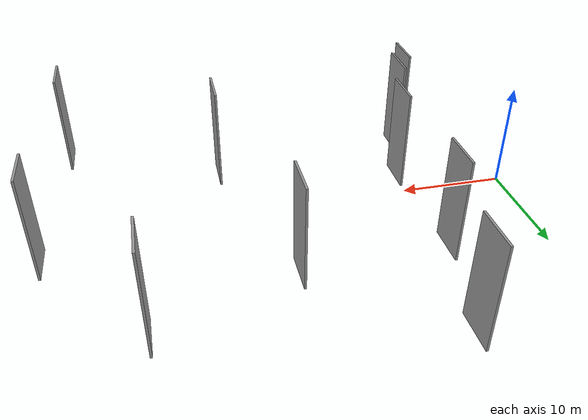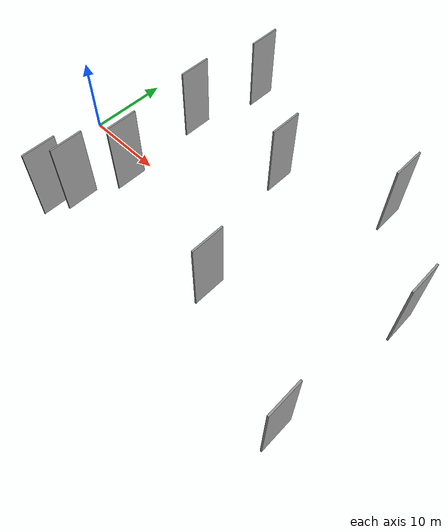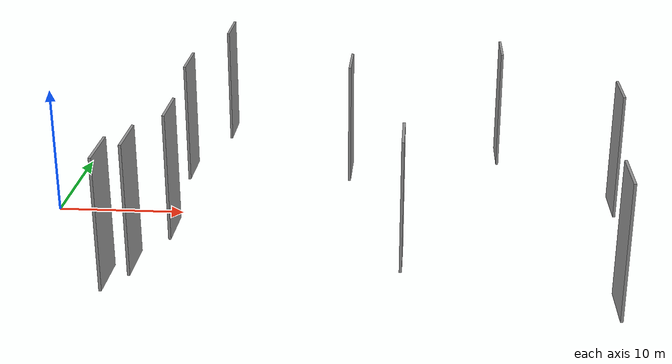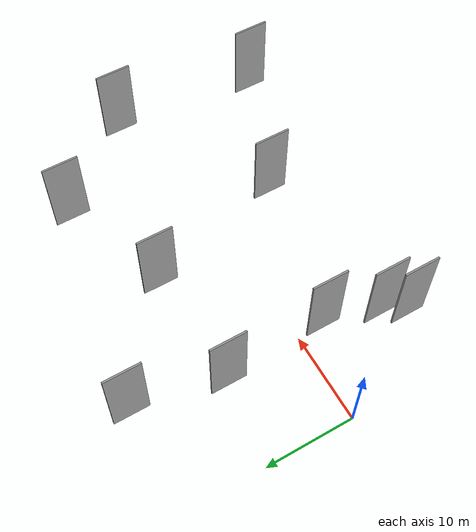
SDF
<sdf version="1.6">
 <world name="default">
  <scene>
   <sky><clouds><speed>12</speed></clouds></sky>
   <ambient>0.4 0.4 0.4 1</ambient>
   <background>0.7 0.7 0.7 1</background>
   <shadows>1</shadows>
  </scene>
  <gravity>0 0 -9.8066</gravity>
  <magnetic_field>6e-06 2.3e-05 -4.2e-05</magnetic_field>
  <physics default="0" name="default_physics" type="ode">
   <ode>
    <solver>
     <type>quick</type>
     <iters>10</iters>
     <sor>1.0</sor>
     <use_dynamic_moi_rescaling>0</use_dynamic_moi_rescaling>
    </solver>
    <constraints>
     <cfm>0</cfm>
     <erp>0.2</erp>
     <contact_max_correcting_vel>100</contact_max_correcting_vel>
     <contact_surface_layer>0.001</contact_surface_layer>
    </constraints>
   </ode>
   <max_step_size>0.004</max_step_size>
   <real_time_factor>1</real_time_factor>
   <real_time_update_rate>250</real_time_update_rate>
  </physics>
  <light name="sun" type="directional">
   <pose>0 0 10 0 0 0</pose>
   <diffuse>0.8 0.8 0.8 1</diffuse>
   <specular>0.2 0.2 0.2 1</specular>
   <attenuation>
    <range>1000</range>
    <constant>0.9</constant>
    <linear>0.01</linear>
    <quadratic>0.001</quadratic>
   </attenuation>
   <direction>-0.5 0.1 -0.9</direction>
  </light>
  <model name="grey_wall_1">
   <static>1</static>
   <pose>42.3617 -13.1515 0.0 0.000000 0.000000 1.570796</pose>
   <link name="link">
    <pose>0 0 5.00 0 0 0</pose>
    <collision name="collision"><geometry><box><size>4.00 0.2 10.00</size></box></geometry></collision>
    <visual name="visual">
     <cast_shadows>0</cast_shadows>
     <geometry><box><size>4.00 0.2 10.00</size></box></geometry>
     <material>
      <script>
       <uri>model://grey_wall/materials/scripts</uri>
       <uri>model://grey_wall/materials/textures</uri>
       <name>vrc/grey_wall</name>
      </script>
     </material>
    </visual>
   </link>
  </model>
  <model name="grey_wall_2">
   <static>1</static>
   <pose>11.3151 18.6485 0.0 0.000000 0.000000 1.570796</pose>
   <link name="link">
    <pose>0 0 5.00 0 0 0</pose>
    <collision name="collision"><geometry><box><size>4.00 0.2 10.00</size></box></geometry></collision>
    <visual name="visual">
     <cast_shadows>0</cast_shadows>
     <geometry><box><size>4.00 0.2 10.00</size></box></geometry>
     <material>
      <script>
       <uri>model://grey_wall/materials/scripts</uri>
       <uri>model://grey_wall/materials/textures</uri>
       <name>vrc/grey_wall</name>
      </script>
     </material>
    </visual>
   </link>
  </model>
  <model name="grey_wall_3">
   <static>1</static>
   <pose>22.8247 9.3951 0.0 0.000000 0.000000 1.570796</pose>
   <link name="link">
    <pose>0 0 5.00 0 0 0</pose>
    <collision name="collision"><geometry><box><size>4.00 0.2 10.00</size></box></geometry></collision>
    <visual name="visual">
     <cast_shadows>0</cast_shadows>
     <geometry><box><size>4.00 0.2 10.00</size></box></geometry>
     <material>
      <script>
       <uri>model://grey_wall/materials/scripts</uri>
       <uri>model://grey_wall/materials/textures</uri>
       <name>vrc/grey_wall</name>
      </script>
     </material>
    </visual>
   </link>
  </model>
  <model name="grey_wall_4">
   <static>1</static>
   <pose>6.7322 -11.3866 0.0 0.000000 0.000000 1.570796</pose>
   <link name="link">
    <pose>0 0 5.00 0 0 0</pose>
    <collision name="collision"><geometry><box><size>4.00 0.2 10.00</size></box></geometry></collision>
    <visual name="visual">
     <cast_shadows>0</cast_shadows>
     <geometry><box><size>4.00 0.2 10.00</size></box></geometry>
     <material>
      <script>
       <uri>model://grey_wall/materials/scripts</uri>
       <uri>model://grey_wall/materials/textures</uri>
       <name>vrc/grey_wall</name>
      </script>
     </material>
    </visual>
   </link>
  </model>
  <model name="grey_wall_5">
   <static>1</static>
   <pose>27.5345 -7.0574 0.0 0.000000 0.000000 1.570796</pose>
   <link name="link">
    <pose>0 0 5.00 0 0 0</pose>
    <collision name="collision"><geometry><box><size>4.00 0.2 10.00</size></box></geometry></collision>
    <visual name="visual">
     <cast_shadows>0</cast_shadows>
     <geometry><box><size>4.00 0.2 10.00</size></box></geometry>
     <material>
      <script>
       <uri>model://grey_wall/materials/scripts</uri>
       <uri>model://grey_wall/materials/textures</uri>
       <name>vrc/grey_wall</name>
      </script>
     </material>
    </visual>
   </link>
  </model>
  <model name="grey_wall_6">
   <static>1</static>
   <pose>44.1621 3.6157 0.0 0.000000 0.000000 1.570796</pose>
   <link name="link">
    <pose>0 0 5.00 0 0 0</pose>
    <collision name="collision"><geometry><box><size>4.00 0.2 10.00</size></box></geometry></collision>
    <visual name="visual">
     <cast_shadows>0</cast_shadows>
     <geometry><box><size>4.00 0.2 10.00</size></box></geometry>
     <material>
      <script>
       <uri>model://grey_wall/materials/scripts</uri>
       <uri>model://grey_wall/materials/textures</uri>
       <name>vrc/grey_wall</name>
      </script>
     </material>
    </visual>
   </link>
  </model>
  <model name="grey_wall_7">
   <static>1</static>
   <pose>8.1661 -8.9313 0.0 0.000000 0.000000 1.570796</pose>
   <link name="link">
    <pose>0 0 5.00 0 0 0</pose>
    <collision name="collision"><geometry><box><size>4.00 0.2 10.00</size></box></geometry></collision>
    <visual name="visual">
     <cast_shadows>0</cast_shadows>
     <geometry><box><size>4.00 0.2 10.00</size></box></geometry>
     <material>
      <script>
       <uri>model://grey_wall/materials/scripts</uri>
       <uri>model://grey_wall/materials/textures</uri>
       <name>vrc/grey_wall</name>
      </script>
     </material>
    </visual>
   </link>
  </model>
  <model name="grey_wall_8">
   <static>1</static>
   <pose>9.2636 8.7656 0.0 0.000000 0.000000 1.570796</pose>
   <link name="link">
    <pose>0 0 5.00 0 0 0</pose>
    <collision name="collision"><geometry><box><size>4.00 0.2 10.00</size></box></geometry></collision>
    <visual name="visual">
     <cast_shadows>0</cast_shadows>
     <geometry><box><size>4.00 0.2 10.00</size></box></geometry>
     <material>
      <script>
       <uri>model://grey_wall/materials/scripts</uri>
       <uri>model://grey_wall/materials/textures</uri>
       <name>vrc/grey_wall</name>
      </script>
     </material>
    </visual>
   </link>
  </model>
  <model name="grey_wall_9">
   <static>1</static>
   <pose>35.4713 13.9170 0.0 0.000000 0.000000 1.570796</pose>
   <link name="link">
    <pose>0 0 5.00 0 0 0</pose>
    <collision name="collision"><geometry><box><size>4.00 0.2 10.00</size></box></geometry></collision>
    <visual name="visual">
     <cast_shadows>0</cast_shadows>
     <geometry><box><size>4.00 0.2 10.00</size></box></geometry>
     <material>
      <script>
       <uri>model://grey_wall/materials/scripts</uri>
       <uri>model://grey_wall/materials/textures</uri>
       <name>vrc/grey_wall</name>
      </script>
     </material>
    </visual>
   </link>
  </model>
  <model name="grey_wall_10">
   <static>1</static>
   <pose>9.9177 -2.9228 0.0 0.000000 0.000000 1.570796</pose>
   <link name="link">
    <pose>0 0 5.00 0 0 0</pose>
    <collision name="collision"><geometry><box><size>4.00 0.2 10.00</size></box></geometry></collision>
    <visual name="visual">
     <cast_shadows>0</cast_shadows>
     <geometry><box><size>4.00 0.2 10.00</size></box></geometry>
     <material>
      <script>
       <uri>model://grey_wall/materials/scripts</uri>
       <uri>model://grey_wall/materials/textures</uri>
       <name>vrc/grey_wall</name>
      </script>
     </material>
    </visual>
   </link>
  </model>
 </world>
</sdf>
